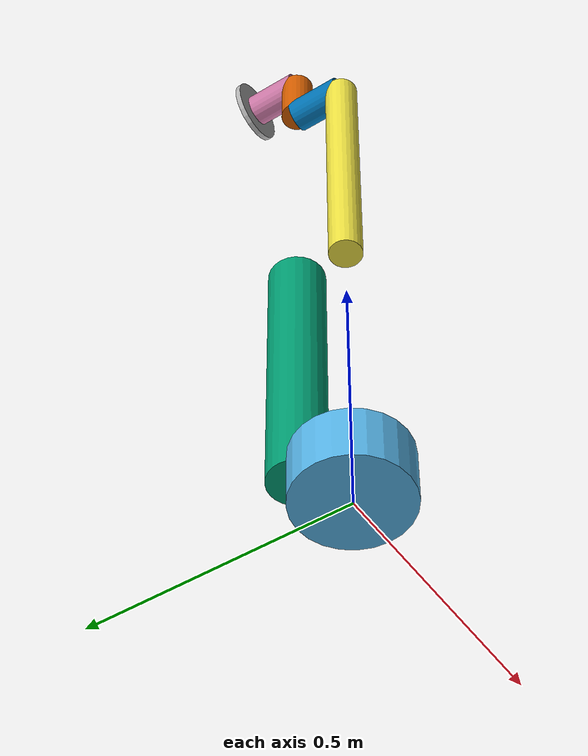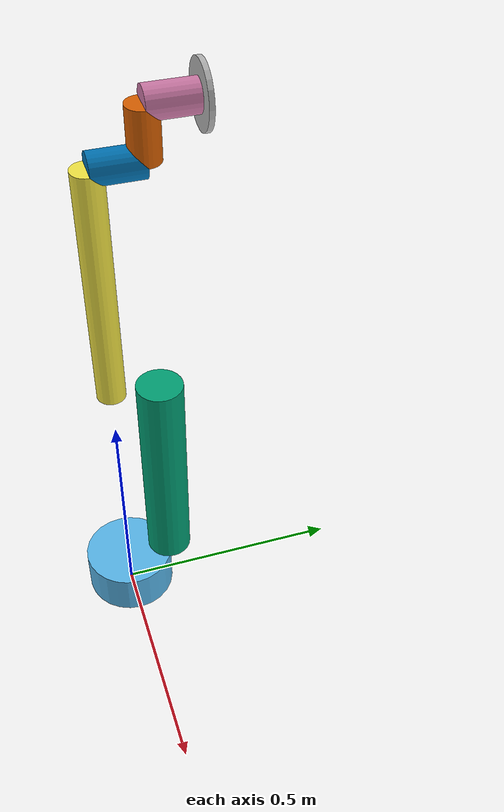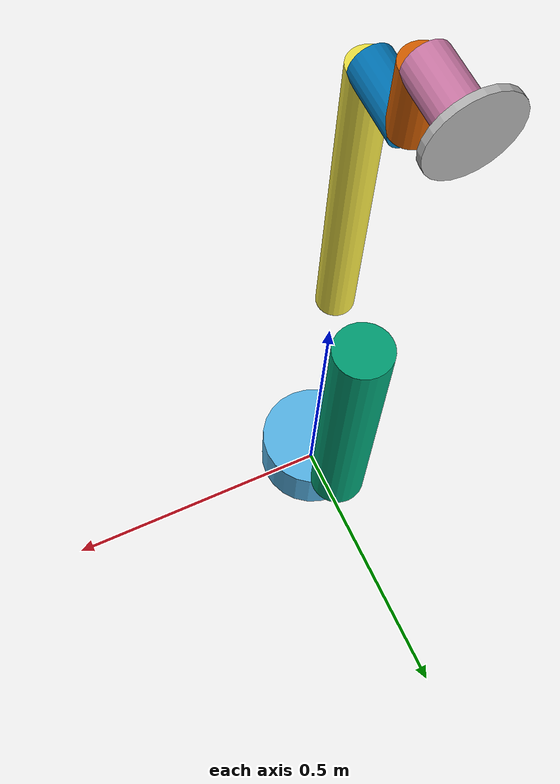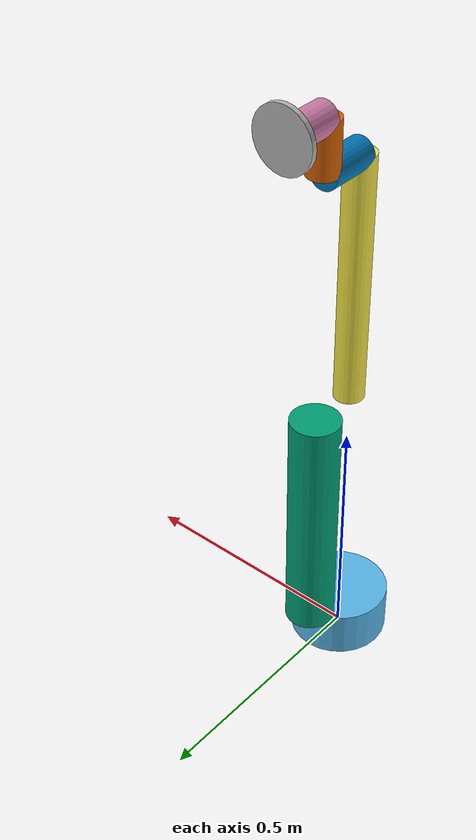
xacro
<?xml version="1.0"?>
<robot name="universal_robot">

  <property name="pi" value="3.14" />

  <property name="shoulder_height" value="0.1" />
  <property name="shoulder_offset" value="0.1" />
  <property name="shoulder_radius" value="0.1" />
  <property name="upper_arm_length" value="0.5" />
  <property name="upper_arm_radius" value="0.05" />
  <property name="forearm_length" value="0.5" />
  <property name="forearm_radius" value="0.03" />
  <property name="wrist_1_length" value="0.1" />
  <property name="wrist_2_length" value="0.1" />
  <property name="wrist_3_length" value="0.1" />
  <property name="wrist_radius" value="0.03" />

  <link name="base_link" />

  <joint name="shoulder_pan_joint" type="revolute">
    <parent link="base_link" />
    <child link = "shoulder_link" />
    <origin xyz="0.0 0.0 ${shoulder_height}" rpy="0.0 0.0 0.0" />
    <axis xyz="0.0 0.0 1.0" />
    <limit lower="-${pi}" upper="${pi}" effort="10.0" velocity="1.0"/>
  </joint>

  <link name="shoulder_link">
    <visual>
      <geometry>
        <cylinder length="${shoulder_height}" radius="${shoulder_radius}"/>
      </geometry>
      <origin xyz="0.0 0.0 ${-shoulder_height/2.0}" rpy="0.0 0.0 0.0" />
    </visual>
    <collision>
      <geometry>
        <cylinder length="${shoulder_height}" radius="${shoulder_radius}"/>
      </geometry>
      <origin xyz="0.0 0.0 ${-shoulder_height/2.0}" rpy="0.0 0.0 0.0" />
    </collision>
  </link>

  <joint name="shoulder_lift_joint" type="revolute">
    <parent link="shoulder_link" />
    <child link = "upper_arm_link" />
    <origin xyz="0.0 ${shoulder_offset} 0.0" rpy="0.0 0.0 0.0" />
    <axis xyz="0.0 1.0 0.0" />
    <limit lower="-${pi}" upper="${pi}" effort="10.0" velocity="1.0"/>
  </joint>

  <link name="upper_arm_link">
    <visual>
      <geometry>
        <cylinder length="${upper_arm_length}" radius="${upper_arm_radius}"/>
      </geometry>
      <origin xyz="0.0 0.0 ${upper_arm_length/2.0}" rpy="0.0 0.0 0.0" />
    </visual>
    <collision>
      <geometry>
        <cylinder length="${upper_arm_length}" radius="${upper_arm_radius}"/>
      </geometry>
      <origin xyz="0.0 0.0 ${upper_arm_length/2.0}" rpy="0.0 0.0 0.0" />
    </collision>
  </link>

  <joint name="elbow_joint" type="revolute">
    <parent link="upper_arm_link" />
    <child link = "forearm_link" />
    <origin xyz="0.0 ${-shoulder_offset} ${upper_arm_length}" rpy="0.0 0.0 0.0" />
    <axis xyz="0.0 -1.0 0.0" />
    <limit lower="-${pi}" upper="${pi}" effort="10.0" velocity="1.0"/>
  </joint>

  <link name="forearm_link">
    <visual>
      <geometry>
        <cylinder length="${forearm_length}" radius="${forearm_radius}"/>
      </geometry>
      <origin xyz="0.0 0.0 ${forearm_length/2.0}" rpy="0.0 0.0 0.0" />
    </visual>
    <collision>
      <geometry>
        <cylinder length="${forearm_length}" radius="${forearm_radius}"/>
      </geometry>
      <origin xyz="0.0 0.0 ${forearm_length/2.0}" rpy="0.0 0.0 0.0" />
    </collision>
  </link>

  <joint name="wrist_1_joint" type="revolute">
    <parent link="forearm_link" />
    <child link = "wrist_1_link" />
    <origin xyz="0.0 0.0 ${forearm_length}" rpy="0.0 0.0 0.0" />
    <axis xyz="0.0 1.0 0.0" />
    <limit lower="-${pi}" upper="${pi}" effort="10.0" velocity="1.0"/>
  </joint>

  <link name="wrist_1_link">
    <visual>
      <geometry>
        <cylinder length="${wrist_1_length}" radius="${wrist_radius}"/>
      </geometry>
      <origin xyz="0.0 ${wrist_1_length/2.0} 0.0" rpy="-${pi/2.0} 0.0 0.0" />
    </visual>
    <collision>
      <geometry>
        <cylinder length="${wrist_1_length}" radius="${wrist_radius}"/>
      </geometry>
      <origin xyz="0.0 ${wrist_1_length/2.0} 0.0" rpy="-${pi/2.0} 0.0 0.0" />
    </collision>
  </link>

  <joint name="wrist_2_joint" type="revolute">
    <parent link="wrist_1_link" />
    <child link = "wrist_2_link" />
    <origin xyz="0.0 ${wrist_1_length} 0.0" rpy="0.0 0.0 0.0" />
    <axis xyz="0.0 0.0 1.0" />
    <limit lower="-${pi}" upper="${pi}" effort="10.0" velocity="1.0"/>
  </joint>

  <link name="wrist_2_link">
    <visual>
      <geometry>
        <cylinder length="${wrist_2_length}" radius="${wrist_radius}"/>
      </geometry>
      <origin xyz="0.0 0.0 ${wrist_2_length/2.0}" rpy="0.0 0.0 0.0" />
    </visual>
    <collision>
      <geometry>
        <cylinder length="${wrist_2_length}" radius="${wrist_radius}"/>
      </geometry>
      <origin xyz="0.0 0.0 ${wrist_2_length/2.0}" rpy="0.0 0.0 0.0" />
    </collision>
  </link>

  <joint name="wrist_3_joint" type="revolute">
    <parent link="wrist_2_link" />
    <child link = "wrist_3_link" />
    <origin xyz="0.0 0.0 ${wrist_3_length}" rpy="0.0 0.0 0.0" />
    <axis xyz="0.0 1.0 0.0" />
    <limit lower="-${pi}" upper="${pi}" effort="10.0" velocity="1.0"/>
  </joint>

  <link name="wrist_3_link">
    <visual>
      <geometry>
        <cylinder length="${wrist_3_length}" radius="${wrist_radius}"/>
      </geometry>
      <origin xyz="0.0 ${wrist_3_length/2.0} 0.0" rpy="${-pi/2.0} 0.0 0.0" />
    </visual>
    <collision>
      <geometry>
        <cylinder length="${wrist_3_length}" radius="${wrist_radius}"/>
      </geometry>
      <origin xyz="0.0 ${wrist_3_length/2.0} 0.0" rpy="${-pi/2.0} 0.0 0.0" />
    </collision>
  </link>

  <joint name="ee_fixed_joint" type="fixed">
    <parent link="wrist_3_link" />
    <child link = "ee_link" />
    <origin xyz="0.0 ${wrist_3_length} 0.0" rpy="0.0 0.0 ${pi/2.0}" />
  </joint>

  <link name="ee_link">
    <visual>
      <geometry>
        <cylinder length="0.01" radius="0.06"/>
      </geometry>
      <origin xyz="0.0 0.0 0.0" rpy="0.0 ${-pi/2.0} 0.0" />
    </visual>
    <collision>
      <geometry>
        <cylinder length="0.01" radius="0.06"/>
      </geometry>
      <origin xyz="0.0 0.0 0.0" rpy="0.0 ${-pi/2.0} 0.0" />
    </collision>
  </link>

</robot>
